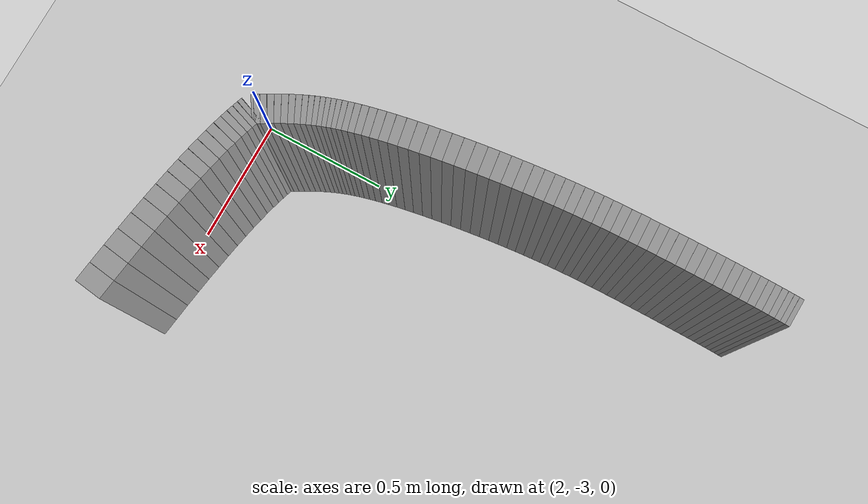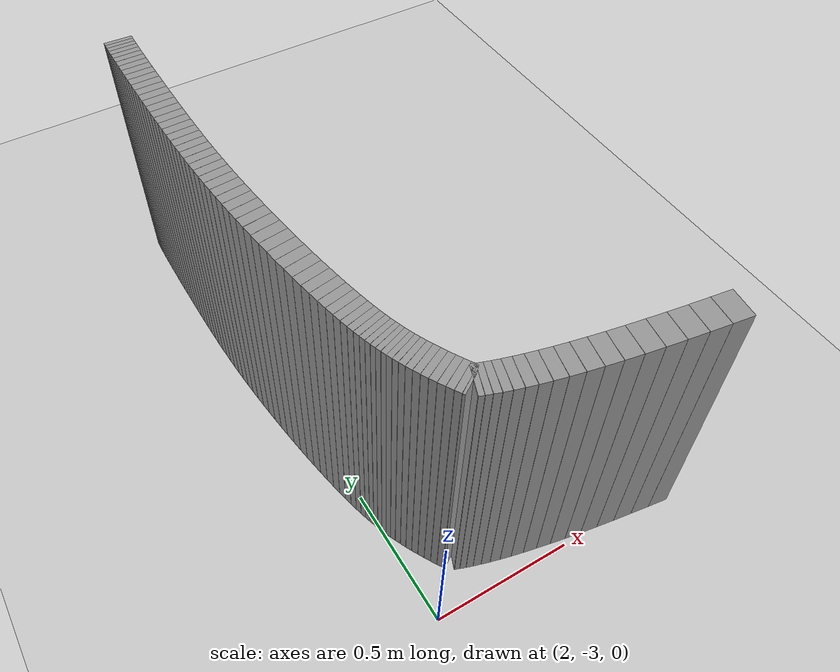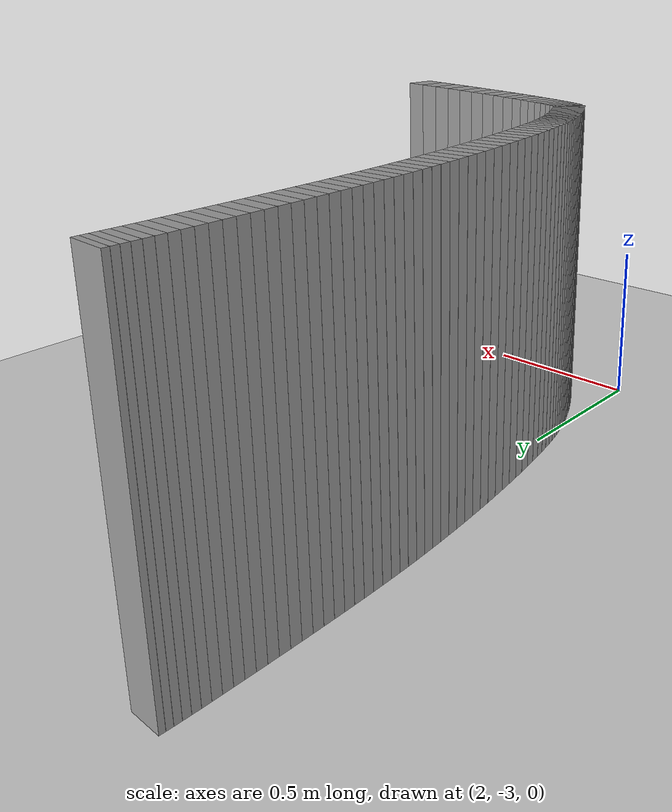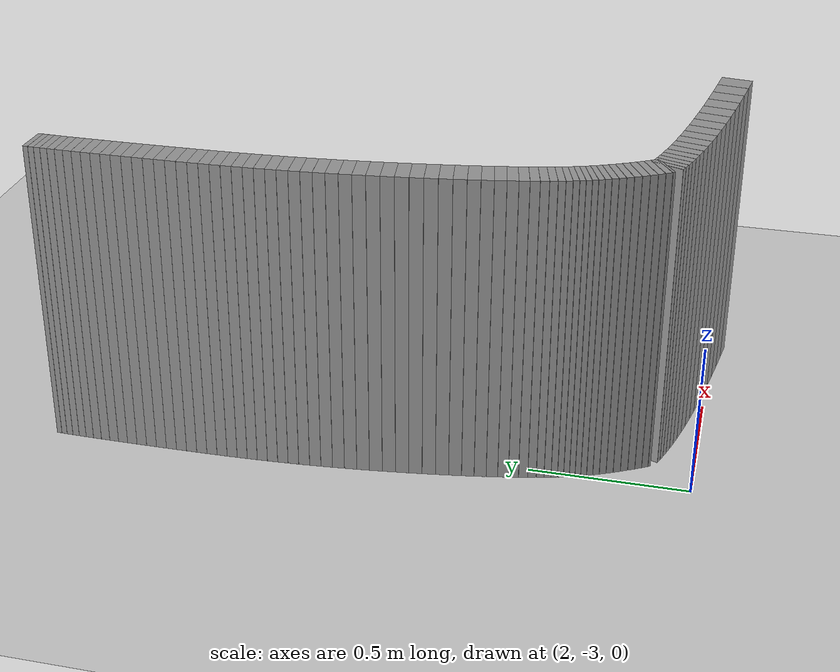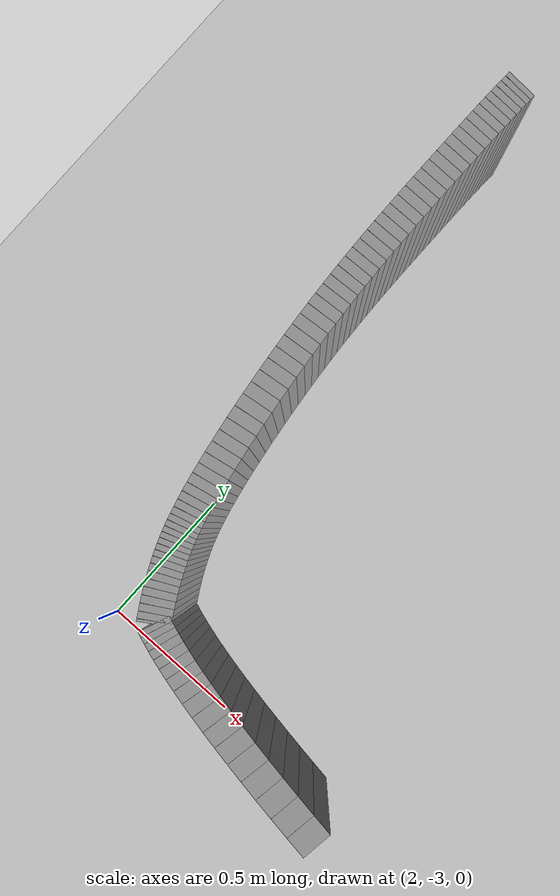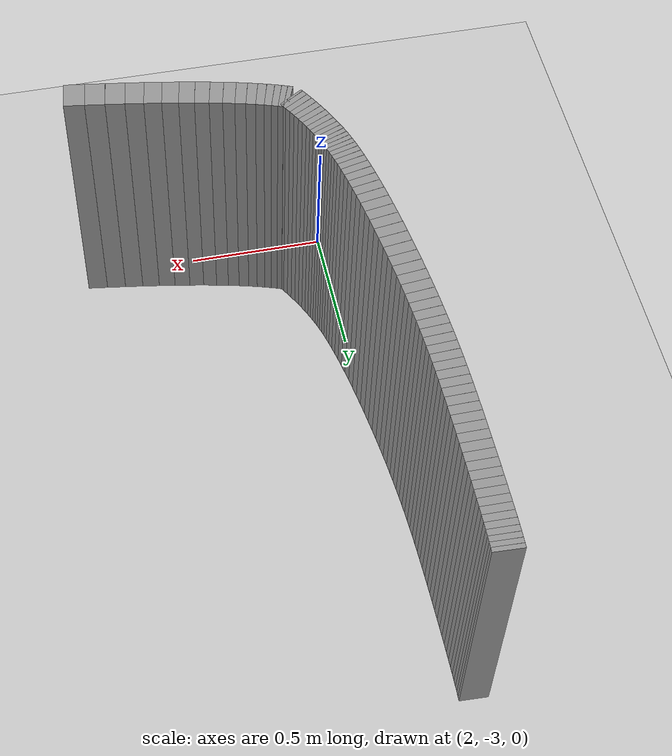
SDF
<sdf version="1.6">
 <world name="default">
  <include><uri>model://ground_plane</uri></include>
  <include><uri>model://sun</uri></include>
  <model name="wall_289_inward">
   <static>true</static>
   <link name="link">
    <collision name="collision">
     <geometry><box><size>0.07243135350981819 0.1 1.0</size></box></geometry>
    </collision>
    <visual name="visual">
     <geometry><box><size>0.07243135350981819 0.1 1.0</size></box></geometry>
     <material>
      <script><uri>file://media/materials/scripts/gazebo.material</uri><name>Gazebo/Gray</name></script>
     </material>
    </visual>
   </link>
   <pose>2.880116098267619 -2.989932443247454 0.5 0 0 3.0035615219338396</pose>
  </model>
  <model name="wall_290_inward">
   <static>true</static>
   <link name="link">
    <collision name="collision">
     <geometry><box><size>0.07023551862200647 0.1 1.0</size></box></geometry>
    </collision>
    <visual name="visual">
     <geometry><box><size>0.07023551862200647 0.1 1.0</size></box></geometry>
     <material>
      <script><uri>file://media/materials/scripts/gazebo.material</uri><name>Gazebo/Gray</name></script>
     </material>
    </visual>
   </link>
   <pose>2.8094920237235885 -2.9799000227440784 0.5 0 0 2.997308090759036</pose>
  </model>
  <model name="wall_291_inward">
   <static>true</static>
   <link name="link">
    <collision name="collision">
     <geometry><box><size>0.0677200457891518 0.1 1.0</size></box></geometry>
    </collision>
    <visual name="visual">
     <geometry><box><size>0.0677200457891518 0.1 1.0</size></box></geometry>
     <material>
      <script><uri>file://media/materials/scripts/gazebo.material</uri><name>Gazebo/Gray</name></script>
     </material>
    </visual>
   </link>
   <pose>2.741266363829852 -2.9697445343968356 0.5 0 0 2.9902149159613867</pose>
  </model>
  <model name="wall_292_inward">
   <static>true</static>
   <link name="link">
    <collision name="collision">
     <geometry><box><size>0.06488777829900443 0.1 1.0</size></box></geometry>
    </collision>
    <visual name="visual">
     <geometry><box><size>0.06488777829900443 0.1 1.0</size></box></geometry>
     <material>
      <script><uri>file://media/materials/scripts/gazebo.material</uri><name>Gazebo/Gray</name></script>
     </material>
    </visual>
   </link>
   <pose>2.675761039034163 -2.9594883054657593 0.5 0 0 2.982178756628701</pose>
  </model>
  <model name="wall_293_inward">
   <static>true</static>
   <link name="link">
    <collision name="collision">
     <geometry><box><size>0.06174569689203697 0.1 1.0</size></box></geometry>
    </collision>
    <visual name="visual">
     <geometry><box><size>0.06174569689203697 0.1 1.0</size></box></geometry>
     <material>
      <script><uri>file://media/materials/scripts/gazebo.material</uri><name>Gazebo/Gray</name></script>
     </material>
    </visual>
   </link>
   <pose>2.613292828028205 -2.9491611819681443 0.5 0 0 2.9731090395535653</pose>
  </model>
  <model name="wall_294_inward">
   <static>true</static>
   <link name="link">
    <collision name="collision">
     <geometry><box><size>0.05831760323918551 0.1 1.0</size></box></geometry>
    </collision>
    <visual name="visual">
     <geometry><box><size>0.05831760323918551 0.1 1.0</size></box></geometry>
     <material>
      <script><uri>file://media/materials/scripts/gazebo.material</uri><name>Gazebo/Gray</name></script>
     </material>
    </visual>
   </link>
   <pose>2.554162498603347 -2.9388021378723295 0.5 0 0 2.962925413730506</pose>
  </model>
  <model name="wall_295_inward">
   <static>true</static>
   <link name="link">
    <collision name="collision">
     <geometry><box><size>0.05464358092872646 0.1 1.0</size></box></geometry>
    </collision>
    <visual name="visual">
     <geometry><box><size>0.05464358092872646 0.1 1.0</size></box></geometry>
     <material>
      <script><uri>file://media/materials/scripts/gazebo.material</uri><name>Gazebo/Gray</name></script>
     </material>
    </visual>
   </link>
   <pose>2.49863787041609 -2.9284594976173324 0.5 0 0 2.9515692568541123</pose>
  </model>
  <model name="wall_296_inward">
   <static>true</static>
   <link name="link">
    <collision name="collision">
     <geometry><box><size>0.0507456147469041 0.1 1.0</size></box></geometry>
    </collision>
    <visual name="visual">
     <geometry><box><size>0.0507456147469041 0.1 1.0</size></box></geometry>
     <material>
      <script><uri>file://media/materials/scripts/gazebo.material</uri><name>Gazebo/Gray</name></script>
     </material>
    </visual>
   </link>
   <pose>2.4469539819687807 -2.9181936892269973 0.5 0 0 2.939001439224151</pose>
  </model>
  <model name="wall_297_inward">
   <static>true</static>
   <link name="link">
    <collision name="collision">
     <geometry><box><size>0.04668152330055696 0.1 1.0</size></box></geometry>
    </collision>
    <visual name="visual">
     <geometry><box><size>0.04668152330055696 0.1 1.0</size></box></geometry>
     <material>
      <script><uri>file://media/materials/scripts/gazebo.material</uri><name>Gazebo/Gray</name></script>
     </material>
    </visual>
   </link>
   <pose>2.399303772372388 -2.908076565314081 0.5 0 0 2.9251797081132835</pose>
  </model>
  <model name="wall_298_inward">
   <static>true</static>
   <link name="link">
    <collision name="collision">
     <geometry><box><size>0.04252727160912906 0.1 1.0</size></box></geometry>
    </collision>
    <visual name="visual">
     <geometry><box><size>0.04252727160912906 0.1 1.0</size></box></geometry>
     <material>
      <script><uri>file://media/materials/scripts/gazebo.material</uri><name>Gazebo/Gray</name></script>
     </material>
    </visual>
   </link>
   <pose>2.3558109928630033 -2.898186284370418 0.5 0 0 2.9101074662294892</pose>
  </model>
  <model name="wall_299_inward">
   <static>true</static>
   <link name="link">
    <collision name="collision">
     <geometry><box><size>0.03835310609346713 0.1 1.0</size></box></geometry>
    </collision>
    <visual name="visual">
     <geometry><box><size>0.03835310609346713 0.1 1.0</size></box></geometry>
     <material>
      <script><uri>file://media/materials/scripts/gazebo.material</uri><name>Gazebo/Gray</name></script>
     </material>
    </visual>
   </link>
   <pose>2.3165237122499818 -2.8886045315804725 0.5 0 0 2.8937974171731145</pose>
  </model>
  <model name="wall_300_inward">
   <static>true</static>
   <link name="link">
    <collision name="collision">
     <geometry><box><size>0.03423978040712125 0.1 1.0</size></box></geometry>
    </collision>
    <visual name="visual">
     <geometry><box><size>0.03423978040712125 0.1 1.0</size></box></geometry>
     <material>
      <script><uri>file://media/materials/scripts/gazebo.material</uri><name>Gazebo/Gray</name></script>
     </material>
    </visual>
   </link>
   <pose>2.281411946383618 -2.8794124075650442 0.5 0 0 2.87629680834394</pose>
  </model>
  <model name="wall_301_inward">
   <static>true</static>
   <link name="link">
    <collision name="collision">
     <geometry><box><size>0.03027596149350913 0.1 1.0</size></box></geometry>
    </collision>
    <visual name="visual">
     <geometry><box><size>0.03027596149350913 0.1 1.0</size></box></geometry>
     <material>
      <script><uri>file://media/materials/scripts/gazebo.material</uri><name>Gazebo/Gray</name></script>
     </material>
    </visual>
   </link>
   <pose>2.2503590756447043 -2.87068317217309 0.5 0 0 2.857670894816747</pose>
  </model>
  <model name="wall_302_inward">
   <static>true</static>
   <link name="link">
    <collision name="collision">
     <geometry><box><size>0.026530183732114968 0.1 1.0</size></box></geometry>
    </collision>
    <visual name="visual">
     <geometry><box><size>0.026530183732114968 0.1 1.0</size></box></geometry>
     <material>
      <script><uri>file://media/materials/scripts/gazebo.material</uri><name>Gazebo/Gray</name></script>
     </material>
    </visual>
   </link>
   <pose>2.2231685989213092 -2.862477381479672 0.5 0 0 2.838024062304411</pose>
  </model>
  <model name="wall_303_inward">
   <static>true</static>
   <link name="link">
    <collision name="collision">
     <geometry><box><size>0.02305491575614376 0.1 1.0</size></box></geometry>
    </collision>
    <visual name="visual">
     <geometry><box><size>0.02305491575614376 0.1 1.0</size></box></geometry>
     <material>
      <script><uri>file://media/materials/scripts/gazebo.material</uri><name>Gazebo/Gray</name></script>
     </material>
    </visual>
   </link>
   <pose>2.19958284323314 -2.8548407590650786 0.5 0 0 2.8174619165125763</pose>
  </model>
  <model name="wall_304_inward">
   <static>true</static>
   <link name="link">
    <collision name="collision">
     <geometry><box><size>0.01988330095073866 0.1 1.0</size></box></geometry>
    </collision>
    <visual name="visual">
     <geometry><box><size>0.01988330095073866 0.1 1.0</size></box></geometry>
     <material>
      <script><uri>file://media/materials/scripts/gazebo.material</uri><name>Gazebo/Gray</name></script>
     </material>
    </visual>
   </link>
   <pose>2.179301409959411 -2.8478027299675377 0.5 0 0 2.7961143464010125</pose>
  </model>
  <model name="wall_305_inward">
   <static>true</static>
   <link name="link">
    <collision name="collision">
     <geometry><box><size>0.016997653589833565 0.1 1.0</size></box></geometry>
    </collision>
    <visual name="visual">
     <geometry><box><size>0.016997653589833565 0.1 1.0</size></box></geometry>
     <material>
      <script><uri>file://media/materials/scripts/gazebo.material</uri><name>Gazebo/Gray</name></script>
     </material>
    </visual>
   </link>
   <pose>2.1620158133841754 -2.841382574321316 0.5 0 0 2.774097723446446</pose>
  </model>
  <model name="wall_306_inward">
   <static>true</static>
   <link name="link">
    <collision name="collision">
     <geometry><box><size>0.00034984600960416144 0.1 1.0</size></box></geometry>
    </collision>
    <visual name="visual">
     <geometry><box><size>0.00034984600960416144 0.1 1.0</size></box></geometry>
     <material>
      <script><uri>file://media/materials/scripts/gazebo.material</uri><name>Gazebo/Gray</name></script>
     </material>
    </visual>
   </link>
   <pose>2.153922668685256 -2.838262608660008 0.5 0 0 2.751505781822975</pose>
  </model>
  <model name="wall_307_inward">
   <static>true</static>
   <link name="link">
    <collision name="collision">
     <geometry><box><size>0.007965274995611508 0.1 1.0</size></box></geometry>
    </collision>
    <visual name="visual">
     <geometry><box><size>0.007965274995611508 0.1 1.0</size></box></geometry>
     <material>
      <script><uri>file://media/materials/scripts/gazebo.material</uri><name>Gazebo/Gray</name></script>
     </material>
    </visual>
   </link>
   <pose>2.151601138169171 -2.8348499157468576 0.5 0 0 2.1439577913642154</pose>
  </model>
  <model name="wall_308_inward">
   <static>true</static>
   <link name="link">
    <collision name="collision">
     <geometry><box><size>0.020848113940397758 0.1 1.0</size></box></geometry>
    </collision>
    <visual name="visual">
     <geometry><box><size>0.020848113940397758 0.1 1.0</size></box></geometry>
     <material>
      <script><uri>file://media/materials/scripts/gazebo.material</uri><name>Gazebo/Gray</name></script>
     </material>
    </visual>
   </link>
   <pose>2.143969204867615 -2.822631527991426 0.5 0 0 2.123461279151185</pose>
  </model>
  <model name="wall_309_inward">
   <static>true</static>
   <link name="link">
    <collision name="collision">
     <geometry><box><size>0.02229313754706647 0.1 1.0</size></box></geometry>
    </collision>
    <visual name="visual">
     <geometry><box><size>0.02229313754706647 0.1 1.0</size></box></geometry>
     <material>
      <script><uri>file://media/materials/scripts/gazebo.material</uri><name>Gazebo/Gray</name></script>
     </material>
    </visual>
   </link>
   <pose>2.1328342159247433 -2.804158344320685 0.5 0 0 2.103693760511967</pose>
  </model>
  <model name="wall_310_inward">
   <static>true</static>
   <link name="link">
    <collision name="collision">
     <geometry><box><size>0.023065207108293698 0.1 1.0</size></box></geometry>
    </collision>
    <visual name="visual">
     <geometry><box><size>0.023065207108293698 0.1 1.0</size></box></geometry>
     <material>
      <script><uri>file://media/materials/scripts/gazebo.material</uri><name>Gazebo/Gray</name></script>
     </material>
    </visual>
   </link>
   <pose>2.1215047179295468 -2.7845129954850076 0.5 0 0 2.0844502646672494</pose>
  </model>
  <model name="wall_311_inward">
   <static>true</static>
   <link name="link">
    <collision name="collision">
     <geometry><box><size>0.02322416639307524 0.1 1.0</size></box></geometry>
    </collision>
    <visual name="visual">
     <geometry><box><size>0.02322416639307524 0.1 1.0</size></box></geometry>
     <material>
      <script><uri>file://media/materials/scripts/gazebo.material</uri><name>Gazebo/Gray</name></script>
     </material>
    </visual>
   </link>
   <pose>2.1103250185308546 -2.7642486741380417 0.5 0 0 2.0654928180123773</pose>
  </model>
  <model name="wall_312_inward">
   <static>true</static>
   <link name="link">
    <collision name="collision">
     <geometry><box><size>0.022857227051888664 0.1 1.0</size></box></geometry>
    </collision>
    <visual name="visual">
     <geometry><box><size>0.022857227051888664 0.1 1.0</size></box></geometry>
     <material>
      <script><uri>file://media/materials/scripts/gazebo.material</uri><name>Gazebo/Gray</name></script>
     </material>
    </visual>
   </link>
   <pose>2.0995764977483407 -2.743869863169814 0.5 0 0 2.0466595138566506</pose>
  </model>
  <model name="wall_313_inward">
   <static>true</static>
   <link name="link">
    <collision name="collision">
     <geometry><box><size>0.02207820857061268 0.1 1.0</size></box></geometry>
    </collision>
    <visual name="visual">
     <geometry><box><size>0.02207820857061268 0.1 1.0</size></box></geometry>
     <material>
      <script><uri>file://media/materials/scripts/gazebo.material</uri><name>Gazebo/Gray</name></script>
     </material>
    </visual>
   </link>
   <pose>2.0894701251443846 -2.7238046052888345 0.5 0 0 2.0277725741286807</pose>
  </model>
  <model name="wall_314_inward">
   <static>true</static>
   <link name="link">
    <collision name="collision">
     <geometry><box><size>0.021040160552848648 0.1 1.0</size></box></geometry>
    </collision>
    <visual name="visual">
     <geometry><box><size>0.021040160552848648 0.1 1.0</size></box></geometry>
     <material>
      <script><uri>file://media/materials/scripts/gazebo.material</uri><name>Gazebo/Gray</name></script>
     </material>
    </visual>
   </link>
   <pose>2.0801378858070305 -2.7043709822842352 0.5 0 0 2.0087448687379275</pose>
  </model>
  <model name="wall_315_inward">
   <static>true</static>
   <link name="link">
    <collision name="collision">
     <geometry><box><size>0.019861159482840354 0.1 1.0</size></box></geometry>
    </collision>
    <visual name="visual">
     <geometry><box><size>0.019861159482840354 0.1 1.0</size></box></geometry>
     <material>
      <script><uri>file://media/materials/scripts/gazebo.material</uri><name>Gazebo/Gray</name></script>
     </material>
    </visual>
   </link>
   <pose>2.0716388928346627 -2.6857710372817705 0.5 0 0 1.9895078338489898</pose>
  </model>
  <model name="wall_316_inward">
   <static>true</static>
   <link name="link">
    <collision name="collision">
     <geometry><box><size>0.01869806169196822 0.1 1.0</size></box></geometry>
    </collision>
    <visual name="visual">
     <geometry><box><size>0.01869806169196822 0.1 1.0</size></box></geometry>
     <material>
      <script><uri>file://media/materials/scripts/gazebo.material</uri><name>Gazebo/Gray</name></script>
     </material>
    </visual>
   </link>
   <pose>2.0639670640901797 -2.668084566106475 0.5 0 0 1.9700455165769506</pose>
  </model>
  <model name="wall_317_inward">
   <static>true</static>
   <link name="link">
    <collision name="collision">
     <geometry><box><size>0.017707390755791978 0.1 1.0</size></box></geometry>
    </collision>
    <visual name="visual">
     <geometry><box><size>0.017707390755791978 0.1 1.0</size></box></geometry>
     <material>
      <script><uri>file://media/materials/scripts/gazebo.material</uri><name>Gazebo/Gray</name></script>
     </material>
    </visual>
   </link>
   <pose>2.0570520997291775 -2.651247388187704 0.5 0 0 1.9503986132392415</pose>
  </model>
  <model name="wall_318_inward">
   <static>true</static>
   <link name="link">
    <collision name="collision">
     <geometry><box><size>0.017038807552685425 0.1 1.0</size></box></geometry>
    </collision>
    <visual name="visual">
     <geometry><box><size>0.017038807552685425 0.1 1.0</size></box></geometry>
     <material>
      <script><uri>file://media/materials/scripts/gazebo.material</uri><name>Gazebo/Gray</name></script>
     </material>
    </visual>
   </link>
   <pose>2.0507712196136003 -2.6350502973203085 0.5 0 0 1.9306667901429533</pose>
  </model>
  <model name="wall_319_inward">
   <static>true</static>
   <link name="link">
    <collision name="collision">
     <geometry><box><size>0.01680621667249438 0.1 1.0</size></box></geometry>
    </collision>
    <visual name="visual">
     <geometry><box><size>0.01680621667249438 0.1 1.0</size></box></geometry>
     <material>
      <script><uri>file://media/materials/scripts/gazebo.material</uri><name>Gazebo/Gray</name></script>
     </material>
    </visual>
   </link>
   <pose>2.0449671194509085 -2.6191551358645757 0.5 0 0 1.911003151905888</pose>
  </model>
  <model name="wall_320_inward">
   <static>true</static>
   <link name="link">
    <collision name="collision">
     <geometry><box><size>0.017072425306695768 0.1 1.0</size></box></geometry>
    </collision>
    <visual name="visual">
     <geometry><box><size>0.017072425306695768 0.1 1.0</size></box></geometry>
     <material>
      <script><uri>file://media/materials/scripts/gazebo.material</uri><name>Gazebo/Gray</name></script>
     </material>
    </visual>
   </link>
   <pose>2.039471475694282 -2.6031329176451186 0.5 0 0 1.891594928679693</pose>
  </model>
  <model name="wall_321_inward">
   <static>true</static>
   <link name="link">
    <collision name="collision">
     <geometry><box><size>0.017870361243447964 0.1 1.0</size></box></geometry>
    </collision>
    <visual name="visual">
     <geometry><box><size>0.017870361243447964 0.1 1.0</size></box></geometry>
     <material>
      <script><uri>file://media/materials/scripts/gazebo.material</uri><name>Gazebo/Gray</name></script>
     </material>
    </visual>
   </link>
   <pose>2.034123563720323 -2.586500960185532 0.5 0 0 1.8726370802202148</pose>
  </model>
  <model name="wall_322_inward">
   <static>true</static>
   <link name="link">
    <collision name="collision">
     <geometry><box><size>0.019183710846544764 0.1 1.0</size></box></geometry>
    </collision>
    <visual name="visual">
     <geometry><box><size>0.019183710846544764 0.1 1.0</size></box></geometry>
     <material>
      <script><uri>file://media/materials/scripts/gazebo.material</uri><name>Gazebo/Gray</name></script>
     </material>
    </visual>
   </link>
   <pose>2.028783893310487 -2.5687608840774194 0.5 0 0 1.85434241412445</pose>
  </model>
  <model name="wall_323_inward">
   <static>true</static>
   <link name="link">
    <collision name="collision">
     <geometry><box><size>0.020934929889302664 0.1 1.0</size></box></geometry>
    </collision>
    <visual name="visual">
     <geometry><box><size>0.020934929889302664 0.1 1.0</size></box></geometry>
     <material>
      <script><uri>file://media/materials/scripts/gazebo.material</uri><name>Gazebo/Gray</name></script>
     </material>
    </visual>
   </link>
   <pose>2.0233478993162555 -2.54945296556076 0.5 0 0 1.8368885723527364</pose>
  </model>
  <model name="wall_324_inward">
   <static>true</static>
   <link name="link">
    <collision name="collision">
     <geometry><box><size>0.023059269606220307 0.1 1.0</size></box></geometry>
    </collision>
    <visual name="visual">
     <geometry><box><size>0.023059269606220307 0.1 1.0</size></box></geometry>
     <material>
      <script><uri>file://media/materials/scripts/gazebo.material</uri><name>Gazebo/Gray</name></script>
     </material>
    </visual>
   </link>
   <pose>2.0177470816245835 -2.528181611522821 0.5 0 0 1.820418767494417</pose>
  </model>
  <model name="wall_325_inward">
   <static>true</static>
   <link name="link">
    <collision name="collision">
     <geometry><box><size>0.025429240361556135 0.1 1.0</size></box></geometry>
    </collision>
    <visual name="visual">
     <geometry><box><size>0.025429240361556135 0.1 1.0</size></box></geometry>
     <material>
      <script><uri>file://media/materials/scripts/gazebo.material</uri><name>Gazebo/Gray</name></script>
     </material>
    </visual>
   </link>
   <pose>2.0119474040726457 -2.5046420052143064 0.5 0 0 1.8050611093562845</pose>
  </model>
  <model name="wall_326_inward">
   <static>true</static>
   <link name="link">
    <collision name="collision">
     <geometry><box><size>0.02790393105775481 0.1 1.0</size></box></geometry>
    </collision>
    <visual name="visual">
     <geometry><box><size>0.02790393105775481 0.1 1.0</size></box></geometry>
     <material>
      <script><uri>file://media/materials/scripts/gazebo.material</uri><name>Gazebo/Gray</name></script>
     </material>
    </visual>
   </link>
   <pose>2.005950507720007 -2.4786591607193937 0.5 0 0 1.790851111368464</pose>
  </model>
  <model name="wall_327_inward">
   <static>true</static>
   <link name="link">
    <collision name="collision">
     <geometry><box><size>0.0303801851658772 0.1 1.0</size></box></geometry>
    </collision>
    <visual name="visual">
     <geometry><box><size>0.0303801851658772 0.1 1.0</size></box></geometry>
     <material>
      <script><uri>file://media/materials/scripts/gazebo.material</uri><name>Gazebo/Gray</name></script>
     </material>
    </visual>
   </link>
   <pose>1.999783026294753 -2.4501778400286365 0.5 0 0 1.7778004615197387</pose>
  </model>
  <model name="wall_328_inward">
   <static>true</static>
   <link name="link">
    <collision name="collision">
     <geometry><box><size>0.032739888763130026 0.1 1.0</size></box></geometry>
    </collision>
    <visual name="visual">
     <geometry><box><size>0.032739888763130026 0.1 1.0</size></box></geometry>
     <material>
      <script><uri>file://media/materials/scripts/gazebo.material</uri><name>Gazebo/Gray</name></script>
     </material>
    </visual>
   </link>
   <pose>1.9934879562634027 -2.419252565414798 0.5 0 0 1.7658660240759143</pose>
  </model>
  <model name="wall_329_inward">
   <static>true</static>
   <link name="link">
    <collision name="collision">
     <geometry><box><size>0.03489694386577902 0.1 1.0</size></box></geometry>
    </collision>
    <visual name="visual">
     <geometry><box><size>0.03489694386577902 0.1 1.0</size></box></geometry>
     <material>
      <script><uri>file://media/materials/scripts/gazebo.material</uri><name>Gazebo/Gray</name></script>
     </material>
    </visual>
   </link>
   <pose>1.9871194934586178 -2.3860397057544915 0.5 0 0 1.75496903075262</pose>
  </model>
  <model name="wall_330_inward">
   <static>true</static>
   <link name="link">
    <collision name="collision">
     <geometry><box><size>0.03678668174038161 0.1 1.0</size></box></geometry>
    </collision>
    <visual name="visual">
     <geometry><box><size>0.03678668174038161 0.1 1.0</size></box></geometry>
     <material>
      <script><uri>file://media/materials/scripts/gazebo.material</uri><name>Gazebo/Gray</name></script>
     </material>
    </visual>
   </link>
   <pose>1.9807359979458596 -2.3507713818895803 0.5 0 0 1.745005161852682</pose>
  </model>
  <model name="wall_331_inward">
   <static>true</static>
   <link name="link">
    <collision name="collision">
     <geometry><box><size>0.03836171656051203 0.1 1.0</size></box></geometry>
    </collision>
    <visual name="visual">
     <geometry><box><size>0.03836171656051203 0.1 1.0</size></box></geometry>
     <material>
      <script><uri>file://media/materials/scripts/gazebo.material</uri><name>Gazebo/Gray</name></script>
     </material>
    </visual>
   </link>
   <pose>1.9743963019973876 -2.3137362748414247 0.5 0 0 1.735854246074694</pose>
  </model>
  <model name="wall_332_inward">
   <static>true</static>
   <link name="link">
    <collision name="collision">
     <geometry><box><size>0.03959232262957552 0.1 1.0</size></box></geometry>
    </collision>
    <visual name="visual">
     <geometry><box><size>0.03959232262957552 0.1 1.0</size></box></geometry>
     <material>
      <script><uri>file://media/materials/scripts/gazebo.material</uri><name>Gazebo/Gray</name></script>
     </material>
    </visual>
   </link>
   <pose>1.968157495869186 -2.2752621520893155 0.5 0 0 1.7273853845631744</pose>
  </model>
  <model name="wall_333_inward">
   <static>true</static>
   <link name="link">
    <collision name="collision">
     <geometry><box><size>0.04047409309153749 0.1 1.0</size></box></geometry>
    </collision>
    <visual name="visual">
     <geometry><box><size>0.04047409309153749 0.1 1.0</size></box></geometry>
     <material>
      <script><uri>file://media/materials/scripts/gazebo.material</uri><name>Gazebo/Gray</name></script>
     </material>
    </visual>
   </link>
   <pose>1.9620727388735344 -2.235694383218266 0.5 0 0 1.7194651608456177</pose>
  </model>
  <model name="wall_334_inward">
   <static>true</static>
   <link name="link">
    <collision name="collision">
     <geometry><box><size>0.04101685408171371 0.1 1.0</size></box></geometry>
    </collision>
    <visual name="visual">
     <geometry><box><size>0.04101685408171371 0.1 1.0</size></box></geometry>
     <material>
      <script><uri>file://media/materials/scripts/gazebo.material</uri><name>Gazebo/Gray</name></script>
     </material>
    </visual>
   </link>
   <pose>1.956189510917302 -2.1953761746387404 0.5 0 0 1.711971874491487</pose>
  </model>
  <model name="wall_335_inward">
   <static>true</static>
   <link name="link">
    <collision name="collision">
     <geometry><box><size>0.04122918853244921 0.1 1.0</size></box></geometry>
    </collision>
    <visual name="visual">
     <geometry><box><size>0.04122918853244921 0.1 1.0</size></box></geometry>
     <material>
      <script><uri>file://media/materials/scripts/gazebo.material</uri><name>Gazebo/Gray</name></script>
     </material>
    </visual>
   </link>
   <pose>1.9505498727869444 -2.1546419684461857 0.5 0 0 1.7047895392345316</pose>
  </model>
  <model name="wall_336_inward">
   <static>true</static>
   <link name="link">
    <collision name="collision">
     <geometry><box><size>0.041134587001718154 0.1 1.0</size></box></geometry>
    </collision>
    <visual name="visual">
     <geometry><box><size>0.041134587001718154 0.1 1.0</size></box></geometry>
     <material>
      <script><uri>file://media/materials/scripts/gazebo.material</uri><name>Gazebo/Gray</name></script>
     </material>
    </visual>
   </link>
   <pose>1.945190603949118 -2.113810541038055 0.5 0 0 1.6978100975663493</pose>
  </model>
  <model name="wall_337_inward">
   <static>true</static>
   <link name="link">
    <collision name="collision">
     <geometry><box><size>0.04077465141883092 0.1 1.0</size></box></geometry>
    </collision>
    <visual name="visual">
     <geometry><box><size>0.04077465141883092 0.1 1.0</size></box></geometry>
     <material>
      <script><uri>file://media/materials/scripts/gazebo.material</uri><name>Gazebo/Gray</name></script>
     </material>
    </visual>
   </link>
   <pose>1.9401417678176438 -2.073168563980996 0.5 0 0 1.6909402510649891</pose>
  </model>
  <model name="wall_338_inward">
   <static>true</static>
   <link name="link">
    <collision name="collision">
     <geometry><box><size>0.04018374448642103 0.1 1.0</size></box></geometry>
    </collision>
    <visual name="visual">
     <geometry><box><size>0.04018374448642103 0.1 1.0</size></box></geometry>
     <material>
      <script><uri>file://media/materials/scripts/gazebo.material</uri><name>Gazebo/Gray</name></script>
     </material>
    </visual>
   </link>
   <pose>1.935426448171118 -2.0329651796426726 0.5 0 0 1.6841089935029356</pose>
  </model>
  <model name="wall_339_inward">
   <static>true</static>
   <link name="link">
    <collision name="collision">
     <geometry><box><size>0.039400499381756764 0.1 1.0</size></box></geometry>
    </collision>
    <visual name="visual">
     <geometry><box><size>0.039400499381756764 0.1 1.0</size></box></geometry>
     <material>
      <script><uri>file://media/materials/scripts/gazebo.material</uri><name>Gazebo/Gray</name></script>
     </material>
    </visual>
   </link>
   <pose>1.931061445957929 -1.9934134274316722 0.5 0 0 1.6772501135470932</pose>
  </model>
  <model name="wall_340_inward">
   <static>true</static>
   <link name="link">
    <collision name="collision">
     <geometry><box><size>0.03847921151558934 0.1 1.0</size></box></geometry>
    </collision>
    <visual name="visual">
     <geometry><box><size>0.03847921151558934 0.1 1.0</size></box></geometry>
     <material>
      <script><uri>file://media/materials/scripts/gazebo.material</uri><name>Gazebo/Gray</name></script>
     </material>
    </visual>
   </link>
   <pose>1.9270565791636773 -1.9546802996551795 0.5 0 0 1.6703211782907383</pose>
  </model>
  <model name="wall_341_inward">
   <static>true</static>
   <link name="link">
    <collision name="collision">
     <geometry><box><size>0.03749355220446076 0.1 1.0</size></box></geometry>
    </collision>
    <visual name="visual">
     <geometry><box><size>0.03749355220446076 0.1 1.0</size></box></geometry>
     <material>
      <script><uri>file://media/materials/scripts/gazebo.material</uri><name>Gazebo/Gray</name></script>
     </material>
    </visual>
   </link>
   <pose>1.9234133065018821 -1.9168692698569938 0.5 0 0 1.6632967724431071</pose>
  </model>
  <model name="wall_342_inward">
   <static>true</static>
   <link name="link">
    <collision name="collision">
     <geometry><box><size>0.0364823108451312 0.1 1.0</size></box></geometry>
    </collision>
    <visual name="visual">
     <geometry><box><size>0.0364823108451312 0.1 1.0</size></box></geometry>
     <material>
      <script><uri>file://media/materials/scripts/gazebo.material</uri><name>Gazebo/Gray</name></script>
     </material>
    </visual>
   </link>
   <pose>1.9201258208835434 -1.8800279578761652 0.5 0 0 1.656194703420055</pose>
  </model>
  <model name="wall_343_inward">
   <static>true</static>
   <link name="link">
    <collision name="collision">
     <geometry><box><size>0.03549410495314027 0.1 1.0</size></box></geometry>
    </collision>
    <visual name="visual">
     <geometry><box><size>0.03549410495314027 0.1 1.0</size></box></geometry>
     <material>
      <script><uri>file://media/materials/scripts/gazebo.material</uri><name>Gazebo/Gray</name></script>
     </material>
    </visual>
   </link>
   <pose>1.9171832271973859 -1.8441604857189824 0.5 0 0 1.6490141818941702</pose>
  </model>
  <model name="wall_344_inward">
   <static>true</static>
   <link name="link">
    <collision name="collision">
     <geometry><box><size>0.034602336252294426 0.1 1.0</size></box></geometry>
    </collision>
    <visual name="visual">
     <geometry><box><size>0.034602336252294426 0.1 1.0</size></box></geometry>
     <material>
      <script><uri>file://media/materials/scripts/gazebo.material</uri><name>Gazebo/Gray</name></script>
     </material>
    </visual>
   </link>
   <pose>1.914568961501479 -1.8092101289870206 0.5 0 0 1.641807520563803</pose>
  </model>
  <model name="wall_345_inward">
   <static>true</static>
   <link name="link">
    <collision name="collision">
     <geometry><box><size>0.03384122196828461 0.1 1.0</size></box></geometry>
    </collision>
    <visual name="visual">
     <geometry><box><size>0.03384122196828461 0.1 1.0</size></box></geometry>
     <material>
      <script><uri>file://media/materials/scripts/gazebo.material</uri><name>Gazebo/Gray</name></script>
     </material>
    </visual>
   </link>
   <pose>1.9122619532788194 -1.7750664206316098 0.5 0 0 1.6346354788852848</pose>
  </model>
  <model name="wall_346_inward">
   <static>true</static>
   <link name="link">
    <collision name="collision">
     <geometry><box><size>0.03324748149232608 0.1 1.0</size></box></geometry>
    </collision>
    <visual name="visual">
     <geometry><box><size>0.03324748149232608 0.1 1.0</size></box></geometry>
     <material>
      <script><uri>file://media/materials/scripts/gazebo.material</uri><name>Gazebo/Gray</name></script>
     </material>
    </visual>
   </link>
   <pose>1.9102391425599685 -1.7415833242550987 0.5 0 0 1.6275737916675823</pose>
  </model>
  <model name="wall_347_inward">
   <static>true</static>
   <link name="link">
    <collision name="collision">
     <geometry><box><size>0.03284375662067009 0.1 1.0</size></box></geometry>
    </collision>
    <visual name="visual">
     <geometry><box><size>0.03284375662067009 0.1 1.0</size></box></geometry>
     <material>
      <script><uri>file://media/materials/scripts/gazebo.material</uri><name>Gazebo/Gray</name></script>
     </material>
    </visual>
   </link>
   <pose>1.908476443146129 -1.7085849459266829 0.5 0 0 1.6207110141430576</pose>
  </model>
  <model name="wall_348_inward">
   <static>true</static>
   <link name="link">
    <collision name="collision">
     <geometry><box><size>0.03260772883052009 0.1 1.0</size></box></geometry>
    </collision>
    <visual name="visual">
     <geometry><box><size>0.03260772883052009 0.1 1.0</size></box></geometry>
     <material>
      <script><uri>file://media/materials/scripts/gazebo.material</uri><name>Gazebo/Gray</name></script>
     </material>
    </visual>
   </link>
   <pose>1.9069506200767994 -1.675894969707187 0.5 0 0 1.6141413724072904</pose>
  </model>
  <model name="wall_349_inward">
   <static>true</static>
   <link name="link">
    <collision name="collision">
     <geometry><box><size>0.03255158266472196 0.1 1.0</size></box></geometry>
    </collision>
    <visual name="visual">
     <geometry><box><size>0.03255158266472196 0.1 1.0</size></box></geometry>
     <material>
      <script><uri>file://media/materials/scripts/gazebo.material</uri><name>Gazebo/Gray</name></script>
     </material>
    </visual>
   </link>
   <pose>1.9056399675203313 -1.64334184529856 0.5 0 0 1.6079263754562496</pose>
  </model>
  <model name="wall_350_inward">
   <static>true</static>
   <link name="link">
    <collision name="collision">
     <geometry><box><size>0.032648155060507424 0.1 1.0</size></box></geometry>
    </collision>
    <visual name="visual">
     <geometry><box><size>0.032648155060507424 0.1 1.0</size></box></geometry>
     <material>
      <script><uri>file://media/materials/scripts/gazebo.material</uri><name>Gazebo/Gray</name></script>
     </material>
    </visual>
   </link>
   <pose>1.9045237018915822 -1.6107612283439168 0.5 0 0 1.6021713049837047</pose>
  </model>
  <model name="wall_351_inward">
   <static>true</static>
   <link name="link">
    <collision name="collision">
     <geometry><box><size>0.03284644409982715 0.1 1.0</size></box></geometry>
    </collision>
    <visual name="visual">
     <geometry><box><size>0.03284644409982715 0.1 1.0</size></box></geometry>
     <material>
      <script><uri>file://media/materials/scripts/gazebo.material</uri><name>Gazebo/Gray</name></script>
     </material>
    </visual>
   </link>
   <pose>1.9035827739311268 -1.5780275626913893 0.5 0 0 1.5969113702457514</pose>
  </model>
  <model name="wall_352_inward">
   <static>true</static>
   <link name="link">
    <collision name="collision">
     <geometry><box><size>0.033105958753674405 0.1 1.0</size></box></geometry>
    </collision>
    <visual name="visual">
     <geometry><box><size>0.033105958753674405 0.1 1.0</size></box></geometry>
     <material>
      <script><uri>file://media/materials/scripts/gazebo.material</uri><name>Gazebo/Gray</name></script>
     </material>
    </visual>
   </link>
   <pose>1.9027996593520817 -1.5450607527427864 0.5 0 0 1.5922001607398704</pose>
  </model>
  <model name="wall_353_inward">
   <static>true</static>
   <link name="link">
    <collision name="collision">
     <geometry><box><size>0.033381940861516864 0.1 1.0</size></box></geometry>
    </collision>
    <visual name="visual">
     <geometry><box><size>0.033381940861516864 0.1 1.0</size></box></geometry>
     <material>
      <script><uri>file://media/materials/scripts/gazebo.material</uri><name>Gazebo/Gray</name></script>
     </material>
    </visual>
   </link>
   <pose>1.902157685571852 -1.5118230742193166 0.5 0 0 1.5880342615085148</pose>
  </model>
  <model name="wall_354_inward">
   <static>true</static>
   <link name="link">
    <collision name="collision">
     <geometry><box><size>0.03363006695509877 0.1 1.0</size></box></geometry>
    </collision>
    <visual name="visual">
     <geometry><box><size>0.03363006695509877 0.1 1.0</size></box></geometry>
     <material>
      <script><uri>file://media/materials/scripts/gazebo.material</uri><name>Gazebo/Gray</name></script>
     </material>
    </visual>
   </link>
   <pose>1.9016408926944846 -1.4783211107174739 0.5 0 0 1.584420822731726</pose>
  </model>
  <model name="wall_355_inward">
   <static>true</static>
   <link name="link">
    <collision name="collision">
     <geometry><box><size>0.0337987580075254 0.1 1.0</size></box></geometry>
    </collision>
    <visual name="visual">
     <geometry><box><size>0.0337987580075254 0.1 1.0</size></box></geometry>
     <material>
      <script><uri>file://media/materials/scripts/gazebo.material</uri><name>Gazebo/Gray</name></script>
     </material>
    </visual>
   </link>
   <pose>1.9012341139779037 -1.4446091930617584 0.5 0 0 1.58131107548408</pose>
  </model>
  <model name="wall_356_inward">
   <static>true</static>
   <link name="link">
    <collision name="collision">
     <geometry><box><size>0.03387818440917342 0.1 1.0</size></box></geometry>
    </collision>
    <visual name="visual">
     <geometry><box><size>0.03387818440917342 0.1 1.0</size></box></geometry>
     <material>
      <script><uri>file://media/materials/scripts/gazebo.material</uri><name>Gazebo/Gray</name></script>
     </material>
    </visual>
   </link>
   <pose>1.9009232595865146 -1.4107721794813473 0.5 0 0 1.5786578055854685</pose>
  </model>
  <model name="wall_357_inward">
   <static>true</static>
   <link name="link">
    <collision name="collision">
     <geometry><box><size>0.033822665633132354 0.1 1.0</size></box></geometry>
    </collision>
    <visual name="visual">
     <geometry><box><size>0.033822665633132354 0.1 1.0</size></box></geometry>
     <material>
      <script><uri>file://media/materials/scripts/gazebo.material</uri><name>Gazebo/Gray</name></script>
     </material>
    </visual>
   </link>
   <pose>1.9006953847516344 -1.3769225431073555 0.5 0 0 1.5763967362110463</pose>
  </model>
  <model name="wall_358_inward">
   <static>true</static>
   <link name="link">
    <collision name="collision">
     <geometry><box><size>0.03361042587722182 0.1 1.0</size></box></geometry>
    </collision>
    <visual name="visual">
     <geometry><box><size>0.03361042587722182 0.1 1.0</size></box></geometry>
     <material>
      <script><uri>file://media/materials/scripts/gazebo.material</uri><name>Gazebo/Gray</name></script>
     </material>
    </visual>
   </link>
   <pose>1.9005396182490317 -1.3432063734755997 0.5 0 0 1.5744295294622925</pose>
  </model>
  <model name="wall_359_inward">
   <static>true</static>
   <link name="link">
    <collision name="collision">
     <geometry><box><size>0.033244646051118994 0.1 1.0</size></box></geometry>
    </collision>
    <visual name="visual">
     <geometry><box><size>0.033244646051118994 0.1 1.0</size></box></geometry>
     <material>
      <script><uri>file://media/materials/scripts/gazebo.material</uri><name>Gazebo/Gray</name></script>
     </material>
    </visual>
   </link>
   <pose>1.900447516773297 -1.3097789774177395 0.5 0 0 1.5726639889493979</pose>
  </model>
  <model name="wall_360_inward">
   <static>true</static>
   <link name="link">
    <collision name="collision">
     <geometry><box><size>0.03269432000173091 0.1 1.0</size></box></geometry>
    </collision>
    <visual name="visual">
     <geometry><box><size>0.03269432000173091 0.1 1.0</size></box></geometry>
     <material>
      <script><uri>file://media/materials/scripts/gazebo.material</uri><name>Gazebo/Gray</name></script>
     </material>
    </visual>
   </link>
   <pose>1.9004131647325337 -1.2768095237165187 0.5 0 0 1.5709986356484895</pose>
  </model>
  <model name="wall_361_inward">
   <static>true</static>
   <link name="link">
    <collision name="collision">
     <geometry><box><size>0.031964420598204264 0.1 1.0</size></box></geometry>
    </collision>
    <visual name="visual">
     <geometry><box><size>0.031964420598204264 0.1 1.0</size></box></geometry>
     <material>
      <script><uri>file://media/materials/scripts/gazebo.material</uri><name>Gazebo/Gray</name></script>
     </material>
    </visual>
   </link>
   <pose>1.900433691653959 -1.244480171522861 0.5 0 0 1.5693050371052897</pose>
  </model>
  <model name="wall_362_inward">
   <static>true</static>
   <link name="link">
    <collision name="collision">
     <geometry><box><size>0.031045488767036535 0.1 1.0</size></box></geometry>
    </collision>
    <visual name="visual">
     <geometry><box><size>0.031045488767036535 0.1 1.0</size></box></geometry>
     <material>
      <script><uri>file://media/materials/scripts/gazebo.material</uri><name>Gazebo/Gray</name></script>
     </material>
    </visual>
   </link>
   <pose>1.9005089463596314 -1.2129753197801474 0.5 0 0 1.567483722925199</pose>
  </model>
  <model name="wall_363_inward">
   <static>true</static>
   <link name="link">
    <collision name="collision">
     <geometry><box><size>0.02993998915122276 0.1 1.0</size></box></geometry>
    </collision>
    <visual name="visual">
     <geometry><box><size>0.02993998915122276 0.1 1.0</size></box></geometry>
     <material>
      <script><uri>file://media/materials/scripts/gazebo.material</uri><name>Gazebo/Gray</name></script>
     </material>
    </visual>
   </link>
   <pose>1.9006412068311995 -1.1824828842634778 0.5 0 0 1.5653961741766091</pose>
  </model>
  <model name="wall_364_inward">
   <static>true</static>
   <link name="link">
    <collision name="collision">
     <geometry><box><size>0.028646643087873434 0.1 1.0</size></box></geometry>
    </collision>
    <visual name="visual">
     <geometry><box><size>0.028646643087873434 0.1 1.0</size></box></geometry>
     <material>
      <script><uri>file://media/materials/scripts/gazebo.material</uri><name>Gazebo/Gray</name></script>
     </material>
    </visual>
   </link>
   <pose>1.9008344823187564 -1.1531902277252724 0.5 0 0 1.5629464171593181</pose>
  </model>
  <model name="wall_365_inward">
   <static>true</static>
   <link name="link">
    <collision name="collision">
     <geometry><box><size>0.02717659959775046 0.1 1.0</size></box></geometry>
    </collision>
    <visual name="visual">
     <geometry><box><size>0.02717659959775046 0.1 1.0</size></box></geometry>
     <material>
      <script><uri>file://media/materials/scripts/gazebo.material</uri><name>Gazebo/Gray</name></script>
     </material>
    </visual>
   </link>
   <pose>1.9010936244504415 -1.1252798396732637 0.5 0 0 1.5599995855476236</pose>
  </model>
  <model name="wall_366_inward">
   <static>true</static>
   <link name="link">
    <collision name="collision">
     <geometry><box><size>0.025557280474410554 0.1 1.0</size></box></geometry>
    </collision>
    <visual name="visual">
     <geometry><box><size>0.025557280474410554 0.1 1.0</size></box></geometry>
     <material>
      <script><uri>file://media/materials/scripts/gazebo.material</uri><name>Gazebo/Gray</name></script>
     </material>
    </visual>
   </link>
   <pose>1.901423305492639 -1.098915001674166 0.5 0 0 1.5564770576693416</pose>
  </model>
  <model name="wall_367_inward">
   <static>true</static>
   <link name="link">
    <collision name="collision">
     <geometry><box><size>0.02381146199811059 0.1 1.0</size></box></geometry>
    </collision>
    <visual name="visual">
     <geometry><box><size>0.02381146199811059 0.1 1.0</size></box></geometry>
     <material>
      <script><uri>file://media/materials/scripts/gazebo.material</uri><name>Gazebo/Gray</name></script>
     </material>
    </visual>
   </link>
   <pose>1.901826729304025 -1.0742339816110178 0.5 0 0 1.5522790367061028</pose>
  </model>
  <model name="wall_368_inward">
   <static>true</static>
   <link name="link">
    <collision name="collision">
     <geometry><box><size>0.02195567751601369 0.1 1.0</size></box></geometry>
    </collision>
    <visual name="visual">
     <geometry><box><size>0.02195567751601369 0.1 1.0</size></box></geometry>
     <material>
      <script><uri>file://media/materials/scripts/gazebo.material</uri><name>Gazebo/Gray</name></script>
     </material>
    </visual>
   </link>
   <pose>1.9023044508370224 -1.0513554680530024 0.5 0 0 1.5473585792709803</pose>
  </model>
  <model name="wall_369_inward">
   <static>true</static>
   <link name="link">
    <collision name="collision">
     <geometry><box><size>0.02002691470684755 0.1 1.0</size></box></geometry>
    </collision>
    <visual name="visual">
     <geometry><box><size>0.02002691470684755 0.1 1.0</size></box></geometry>
     <material>
      <script><uri>file://media/materials/scripts/gazebo.material</uri><name>Gazebo/Gray</name></script>
     </material>
    </visual>
   </link>
   <pose>1.902853611642504 -1.030371442145963 0.5 0 0 1.5416425699924643</pose>
  </model>
  <model name="wall_370_inward">
   <static>true</static>
   <link name="link">
    <collision name="collision">
     <geometry><box><size>0.018083028753245783 0.1 1.0</size></box></geometry>
    </collision>
    <visual name="visual">
     <geometry><box><size>0.018083028753245783 0.1 1.0</size></box></geometry>
     <material>
      <script><uri>file://media/materials/scripts/gazebo.material</uri><name>Gazebo/Gray</name></script>
     </material>
    </visual>
   </link>
   <pose>1.9034679200206666 -1.011326476105264 0.5 0 0 1.5351288281059023</pose>
  </model>
  <model name="wall_371_inward">
   <static>true</static>
   <link name="link">
    <collision name="collision">
     <geometry><box><size>0.01613529080092882 0.1 1.0</size></box></geometry>
    </collision>
    <visual name="visual">
     <geometry><box><size>0.01613529080092882 0.1 1.0</size></box></geometry>
     <material>
      <script><uri>file://media/materials/scripts/gazebo.material</uri><name>Gazebo/Gray</name></script>
     </material>
    </visual>
   </link>
   <pose>1.9041370418931456 -0.9942305199872473 0.5 0 0 1.5278087103455569</pose>
  </model>
 </world>
</sdf>
